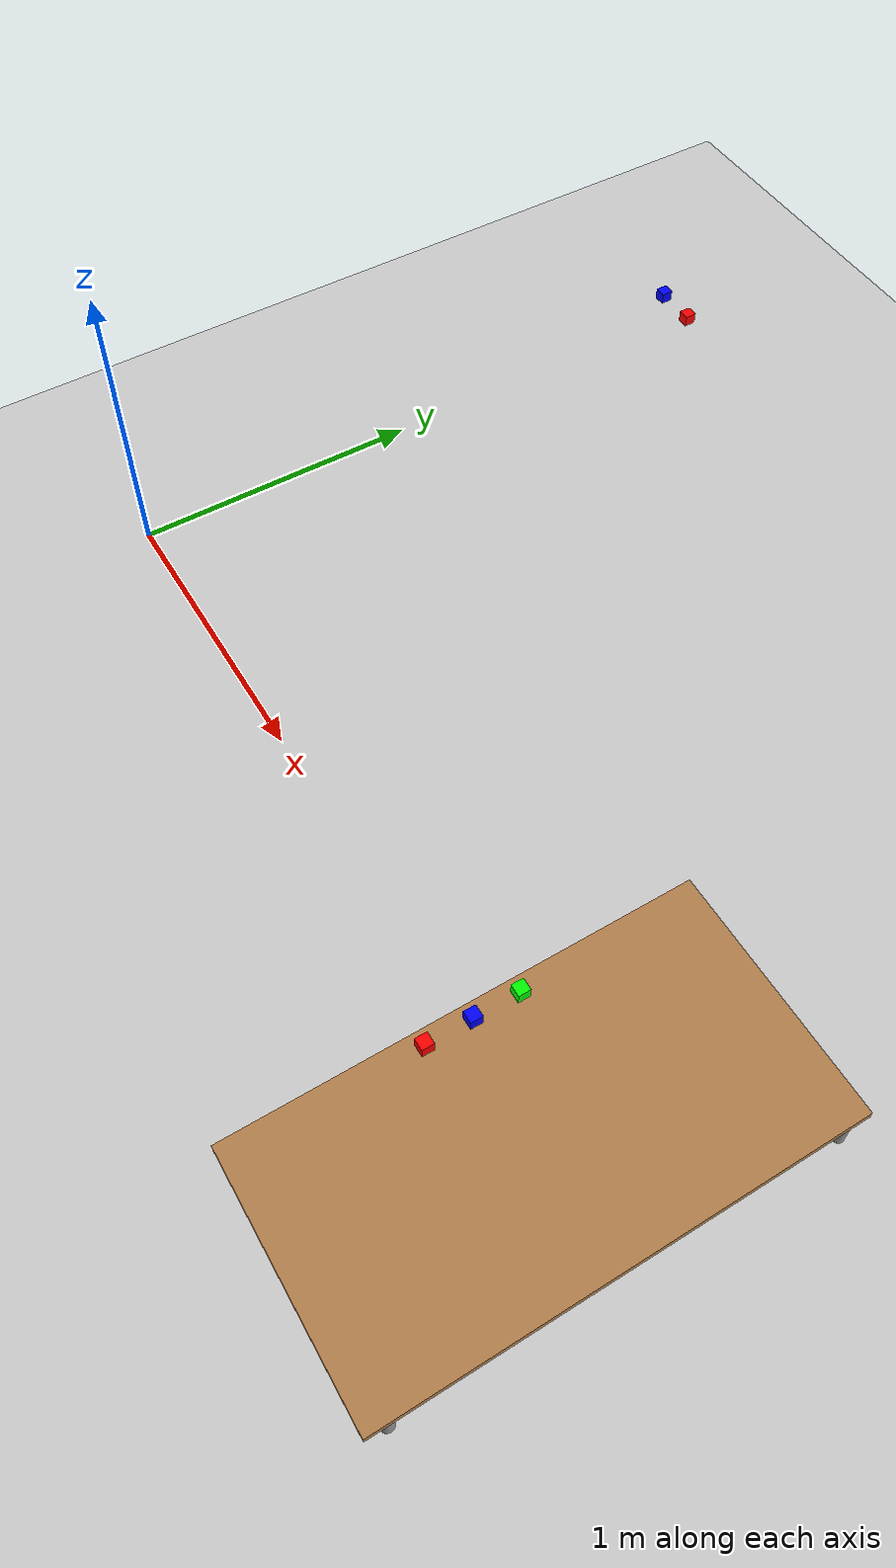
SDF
<sdf version="1.7">
 <world name="my_world">
  <include><uri>model://sun</uri></include>
  <model name="ground_plane">
   <static>1</static>
   <link name="link">
    <collision name="collision">
     <geometry><plane><normal>0 0 1</normal><size>100 100</size></plane></geometry>
     <surface>
      <contact><collide_bitmask>65535</collide_bitmask></contact>
      <friction><ode><mu>1</mu><mu2>50</mu2></ode></friction>
     </surface>
    </collision>
    <visual name="visual">
     <cast_shadows>0</cast_shadows>
     <geometry><plane><normal>0 0 1</normal><size>100 100</size></plane></geometry>
     <material>
      <script><uri>file://media/materials/scripts/gazebo.material</uri><name>Gazebo/Grey</name></script>
     </material>
    </visual>
   </link>
  </model>
  <model name="green_cube_right_new">
   <pose>2.15 0.15 0.135 0 -0 0</pose>
   <link name="link">
    <self_collide>1</self_collide>
    <inertial>
     <inertia><ixx>0.15</ixx><ixy>0</ixy><ixz>0</ixz><iyy>0.15</iyy><iyz>0</iyz><izz>0.15</izz></inertia>
     <mass>0.2</mass>
    </inertial>
    <visual name="visual">
     <geometry><box><size>0.04 0.04 0.04</size></box></geometry>
     <material>
      <ambient>0 1 0 1</ambient>
      <diffuse>0 1 0 1</diffuse>
      <specular>0.1 0.1 0.1 1</specular>
      <emissive>0 0 0 1</emissive>
      <shader type="pixel"><normal_map>__default__</normal_map></shader>
      <script><name>ModelPreview_1::link::visual_MATERIAL_</name><uri>__default__</uri></script>
     </material>
    </visual>
    <collision name="collision">
     <max_contacts>100</max_contacts>
     <geometry><box><size>0.039 0.039 0.039</size></box></geometry>
     <surface>
      <friction>
       <ode><mu>1</mu><mu2>1</mu2><fdir1>0 0 0</fdir1><slip1>0</slip1><slip2>0</slip2></ode>
       <torsional>
        <coefficient>1</coefficient>
        <patch_radius>0</patch_radius>
        <surface_radius>0</surface_radius>
        <use_patch_radius>1</use_patch_radius>
        <ode><slip>0</slip></ode>
       </torsional>
      </friction>
      <bounce><restitution_coefficient>0</restitution_coefficient><threshold>1e+05</threshold></bounce>
      <contact>
       <collide_without_contact>0</collide_without_contact>
       <collide_without_contact_bitmask>1</collide_without_contact_bitmask>
       <collide_bitmask>1</collide_bitmask>
       <ode>
        <soft_cfm>0</soft_cfm>
        <soft_erp>0.2</soft_erp>
        <kp>1e+13</kp>
        <kd>1</kd>
        <max_vel>0.01</max_vel>
        <min_depth>0</min_depth>
       </ode>
       <bullet>
        <split_impulse>1</split_impulse>
        <split_impulse_penetration_threshold>-0.01</split_impulse_penetration_threshold>
        <soft_cfm>0</soft_cfm>
        <soft_erp>0.2</soft_erp>
        <kp>1e+13</kp>
        <kd>1</kd>
       </bullet>
      </contact>
     </surface>
    </collision>
   </link>
   <static>0</static>
  </model>
  <model name="table_right">
   <static>1</static>
   <link name="link">
    <collision name="surface">
     <pose>0 0 0.1 0 -0 0</pose>
     <geometry><box><size>1.5 0.8 0.03</size></box></geometry>
     <surface><friction><ode><mu>0.6</mu><mu2>0.6</mu2></ode></friction></surface>
    </collision>
    <visual name="visual1">
     <pose>0 0 0.1 0 -0 0</pose>
     <geometry><box><size>1.5 0.8 0.03</size></box></geometry>
     <material>
      <script><uri>file://media/materials/scripts/gazebo.material</uri><name>Gazebo/Wood</name></script>
     </material>
    </visual>
    <collision name="front_left_leg">
     <pose>0.68 0.38 0.05 0 -0 0</pose>
     <geometry><cylinder><radius>0.02</radius><length>0.1</length></cylinder></geometry>
    </collision>
    <visual name="front_left_leg">
     <pose>0.68 0.38 0.05 0 -0 0</pose>
     <geometry><cylinder><radius>0.02</radius><length>0.1</length></cylinder></geometry>
     <material>
      <script><uri>file://media/materials/scripts/gazebo.material</uri><name>Gazebo/Grey</name></script>
     </material>
    </visual>
    <collision name="front_right_leg">
     <pose>0.68 -0.38 0.05 0 -0 0</pose>
     <geometry><cylinder><radius>0.02</radius><length>0.1</length></cylinder></geometry>
    </collision>
    <visual name="front_right_leg">
     <pose>0.68 -0.38 0.05 0 -0 0</pose>
     <geometry><cylinder><radius>0.02</radius><length>0.1</length></cylinder></geometry>
     <material>
      <script><uri>file://media/materials/scripts/gazebo.material</uri><name>Gazebo/Grey</name></script>
     </material>
    </visual>
    <collision name="back_right_leg">
     <pose>-0.68 -0.38 0.05 0 -0 0</pose>
     <geometry><cylinder><radius>0.02</radius><length>0.1</length></cylinder></geometry>
    </collision>
    <visual name="back_right_leg">
     <pose>-0.68 -0.38 0.05 0 -0 0</pose>
     <geometry><cylinder><radius>0.02</radius><length>0.1</length></cylinder></geometry>
     <material>
      <script><uri>file://media/materials/scripts/gazebo.material</uri><name>Gazebo/Grey</name></script>
     </material>
    </visual>
    <collision name="back_left_leg">
     <pose>-0.68 0.38 0.05 0 -0 0</pose>
     <geometry><cylinder><radius>0.02</radius><length>0.1</length></cylinder></geometry>
    </collision>
    <visual name="back_left_leg">
     <pose>-0.68 0.38 0.05 0 -0 0</pose>
     <geometry><cylinder><radius>0.02</radius><length>0.1</length></cylinder></geometry>
     <material>
      <script><uri>file://media/materials/scripts/gazebo.material</uri><name>Gazebo/Grey</name></script>
     </material>
    </visual>
   </link>
   <pose>2.5 0 0 0 -0 1.57176</pose>
  </model>
  <model name="blue_cube_right_new">
   <pose>2.15 0 0.135 0 0 0</pose>
   <link name="link">
    <self_collide>1</self_collide>
    <inertial>
     <inertia><ixx>0.15</ixx><ixy>0</ixy><ixz>0</ixz><iyy>0.15</iyy><iyz>0</iyz><izz>0.15</izz></inertia>
     <mass>0.2</mass>
    </inertial>
    <visual name="visual">
     <geometry><box><size>0.04 0.04 0.04</size></box></geometry>
     <material>
      <ambient>0 0 1 1</ambient>
      <diffuse>0 0 1 1</diffuse>
      <specular>0.1 0.1 0.1 1</specular>
      <emissive>0 0 0 1</emissive>
      <shader type="pixel"><normal_map>__default__</normal_map></shader>
      <script><name>ModelPreview_1::link::visual_MATERIAL_</name><uri>__default__</uri></script>
     </material>
    </visual>
    <collision name="collision">
     <max_contacts>100</max_contacts>
     <geometry><box><size>0.039 0.039 0.039</size></box></geometry>
     <surface>
      <friction>
       <ode><mu>1</mu><mu2>1</mu2><fdir1>0 0 0</fdir1><slip1>0</slip1><slip2>0</slip2></ode>
       <torsional>
        <coefficient>1</coefficient>
        <patch_radius>0</patch_radius>
        <surface_radius>0</surface_radius>
        <use_patch_radius>1</use_patch_radius>
        <ode><slip>0</slip></ode>
       </torsional>
      </friction>
      <bounce><restitution_coefficient>0</restitution_coefficient><threshold>1e+05</threshold></bounce>
      <contact>
       <collide_without_contact>0</collide_without_contact>
       <collide_without_contact_bitmask>1</collide_without_contact_bitmask>
       <collide_bitmask>1</collide_bitmask>
       <ode>
        <soft_cfm>0</soft_cfm>
        <soft_erp>0.2</soft_erp>
        <kp>1e+13</kp>
        <kd>1</kd>
        <max_vel>0.01</max_vel>
        <min_depth>0</min_depth>
       </ode>
       <bullet>
        <split_impulse>1</split_impulse>
        <split_impulse_penetration_threshold>-0.01</split_impulse_penetration_threshold>
        <soft_cfm>0</soft_cfm>
        <soft_erp>0.2</soft_erp>
        <kp>1e+13</kp>
        <kd>1</kd>
       </bullet>
      </contact>
     </surface>
    </collision>
   </link>
   <static>0</static>
  </model>
  <model name="red_cube_right_new">
   <pose>2.15 -0.15 0.135 0 0 0</pose>
   <link name="link">
    <self_collide>1</self_collide>
    <inertial>
     <inertia><ixx>0.15</ixx><ixy>0</ixy><ixz>0</ixz><iyy>0.15</iyy><iyz>0</iyz><izz>0.15</izz></inertia>
     <mass>0.2</mass>
    </inertial>
    <visual name="visual">
     <geometry><box><size>0.04 0.04 0.04</size></box></geometry>
     <material>
      <ambient>1 0 0 1</ambient>
      <diffuse>1 0 0 1</diffuse>
      <specular>0.1 0.1 0.1 1</specular>
      <emissive>0 0 0 1</emissive>
      <shader type="pixel"><normal_map>__default__</normal_map></shader>
      <script><name>ModelPreview_1::link::visual_MATERIAL_</name><uri>__default__</uri></script>
     </material>
    </visual>
    <collision name="collision">
     <max_contacts>100</max_contacts>
     <geometry><box><size>0.039 0.039 0.039</size></box></geometry>
     <surface>
      <friction>
       <ode><mu>1</mu><mu2>1</mu2><fdir1>0 0 0</fdir1><slip1>0</slip1><slip2>0</slip2></ode>
       <torsional>
        <coefficient>1</coefficient>
        <patch_radius>0</patch_radius>
        <surface_radius>0</surface_radius>
        <use_patch_radius>1</use_patch_radius>
        <ode><slip>0</slip></ode>
       </torsional>
      </friction>
      <bounce><restitution_coefficient>0</restitution_coefficient><threshold>1e+05</threshold></bounce>
      <contact>
       <collide_without_contact>0</collide_without_contact>
       <collide_without_contact_bitmask>1</collide_without_contact_bitmask>
       <collide_bitmask>1</collide_bitmask>
       <ode>
        <soft_cfm>0</soft_cfm>
        <soft_erp>0.2</soft_erp>
        <kp>1e+13</kp>
        <kd>1</kd>
        <max_vel>0.01</max_vel>
        <min_depth>0</min_depth>
       </ode>
       <bullet>
        <split_impulse>1</split_impulse>
        <split_impulse_penetration_threshold>-0.01</split_impulse_penetration_threshold>
        <soft_cfm>0</soft_cfm>
        <soft_erp>0.2</soft_erp>
        <kp>1e+13</kp>
        <kd>1</kd>
       </bullet>
      </contact>
     </surface>
    </collision>
   </link>
   <static>0</static>
  </model>
  <model name="blue_cube_mid">
   <pose>0 2.15 0.135 0 0 0</pose>
   <link name="link">
    <self_collide>1</self_collide>
    <inertial>
     <inertia><ixx>0.15</ixx><ixy>0</ixy><ixz>0</ixz><iyy>0.15</iyy><iyz>0</iyz><izz>0.15</izz></inertia>
     <mass>0.2</mass>
    </inertial>
    <visual name="visual">
     <geometry><box><size>0.04 0.04 0.04</size></box></geometry>
     <material>
      <ambient>0 0 1 1</ambient>
      <diffuse>0 0 1 1</diffuse>
      <specular>0.1 0.1 0.1 1</specular>
      <emissive>0 0 0 1</emissive>
      <shader type="pixel"><normal_map>__default__</normal_map></shader>
      <script><name>ModelPreview_1::link::visual_MATERIAL_</name><uri>__default__</uri></script>
     </material>
    </visual>
    <collision name="collision">
     <max_contacts>100</max_contacts>
     <geometry><box><size>0.039 0.039 0.039</size></box></geometry>
     <surface>
      <friction>
       <ode><mu>1</mu><mu2>1</mu2><fdir1>0 0 0</fdir1><slip1>0</slip1><slip2>0</slip2></ode>
       <torsional>
        <coefficient>1</coefficient>
        <patch_radius>0</patch_radius>
        <surface_radius>0</surface_radius>
        <use_patch_radius>1</use_patch_radius>
        <ode><slip>0</slip></ode>
       </torsional>
      </friction>
      <bounce><restitution_coefficient>0</restitution_coefficient><threshold>1e+05</threshold></bounce>
      <contact>
       <collide_without_contact>0</collide_without_contact>
       <collide_without_contact_bitmask>1</collide_without_contact_bitmask>
       <collide_bitmask>1</collide_bitmask>
       <ode>
        <soft_cfm>0</soft_cfm>
        <soft_erp>0.2</soft_erp>
        <kp>1e+13</kp>
        <kd>1</kd>
        <max_vel>0.01</max_vel>
        <min_depth>0</min_depth>
       </ode>
       <bullet>
        <split_impulse>1</split_impulse>
        <split_impulse_penetration_threshold>-0.01</split_impulse_penetration_threshold>
        <soft_cfm>0</soft_cfm>
        <soft_erp>0.2</soft_erp>
        <kp>1e+13</kp>
        <kd>1</kd>
       </bullet>
      </contact>
     </surface>
    </collision>
   </link>
   <static>0</static>
  </model>
  <model name="red_cube_mid">
   <pose>0.15 2.15 0.135 0 0 0</pose>
   <link name="link">
    <self_collide>1</self_collide>
    <inertial>
     <inertia><ixx>0.15</ixx><ixy>0</ixy><ixz>0</ixz><iyy>0.15</iyy><iyz>0</iyz><izz>0.15</izz></inertia>
     <mass>0.2</mass>
    </inertial>
    <visual name="visual">
     <geometry><box><size>0.04 0.04 0.04</size></box></geometry>
     <material>
      <ambient>1 0 0 1</ambient>
      <diffuse>1 0 0 1</diffuse>
      <specular>0.1 0.1 0.1 1</specular>
      <emissive>0 0 0 1</emissive>
      <shader type="pixel"><normal_map>__default__</normal_map></shader>
      <script><name>ModelPreview_1::link::visual_MATERIAL_</name><uri>__default__</uri></script>
     </material>
    </visual>
    <collision name="collision">
     <max_contacts>100</max_contacts>
     <geometry><box><size>0.039 0.039 0.039</size></box></geometry>
     <surface>
      <friction>
       <ode><mu>1</mu><mu2>1</mu2><fdir1>0 0 0</fdir1><slip1>0</slip1><slip2>0</slip2></ode>
       <torsional>
        <coefficient>1</coefficient>
        <patch_radius>0</patch_radius>
        <surface_radius>0</surface_radius>
        <use_patch_radius>1</use_patch_radius>
        <ode><slip>0</slip></ode>
       </torsional>
      </friction>
      <bounce><restitution_coefficient>0</restitution_coefficient><threshold>1e+05</threshold></bounce>
      <contact>
       <collide_without_contact>0</collide_without_contact>
       <collide_without_contact_bitmask>1</collide_without_contact_bitmask>
       <collide_bitmask>1</collide_bitmask>
       <ode>
        <soft_cfm>0</soft_cfm>
        <soft_erp>0.2</soft_erp>
        <kp>1e+13</kp>
        <kd>1</kd>
        <max_vel>0.01</max_vel>
        <min_depth>0</min_depth>
       </ode>
       <bullet>
        <split_impulse>1</split_impulse>
        <split_impulse_penetration_threshold>-0.01</split_impulse_penetration_threshold>
        <soft_cfm>0</soft_cfm>
        <soft_erp>0.2</soft_erp>
        <kp>1e+13</kp>
        <kd>1</kd>
       </bullet>
      </contact>
     </surface>
    </collision>
   </link>
   <static>0</static>
  </model>
 </world>
</sdf>
